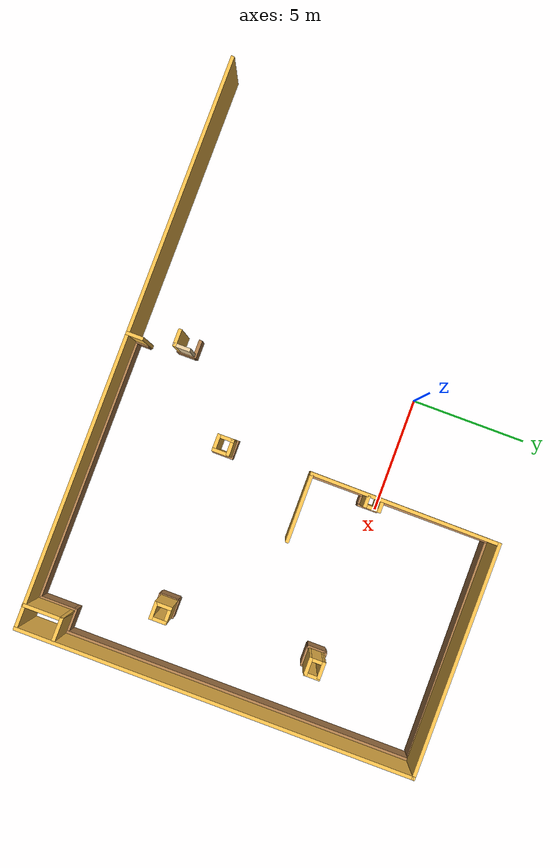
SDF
<sdf version="1.6">
 <model name="costa-gv">
  <pose>1.97685 -3.58664 0 0 -0 0</pose>
  <link name="Wall_162">
   <collision name="Wall_162_Collision">
    <geometry><box><size>0.7 0.15 1</size></box></geometry>
    <pose>0 0 0.5 0 -0 0</pose>
   </collision>
   <visual name="Wall_162_Visual">
    <pose>0 0 0.5 0 -0 0</pose>
    <geometry><box><size>0.7 0.15 1</size></box></geometry>
    <material>
     <script><uri>file://media/materials/scripts/gazebo.material</uri><name>Gazebo/Wood</name></script>
     <ambient>1 1 1 1</ambient>
    </material>
    <meta><layer>0</layer></meta>
   </visual>
   <pose>-0.174848 -8.16836 0 0 -0 -1.5708</pose>
  </link>
  <link name="Wall_169">
   <collision name="Wall_169_Collision">
    <geometry><box><size>0.8 0.15 1</size></box></geometry>
    <pose>0 0 0.5 0 -0 0</pose>
   </collision>
   <visual name="Wall_169_Visual">
    <pose>0 0 0.5 0 -0 0</pose>
    <geometry><box><size>0.8 0.15 1</size></box></geometry>
    <material>
     <script><uri>file://media/materials/scripts/gazebo.material</uri><name>Gazebo/Wood</name></script>
     <ambient>1 1 1 1</ambient>
    </material>
    <meta><layer>0</layer></meta>
   </visual>
   <pose>-0.414512 -6.23417 0 0 -0 -1.5708</pose>
  </link>
  <link name="Wall_173">
   <collision name="Wall_173_Collision">
    <geometry><box><size>0.8 0.15 1</size></box></geometry>
    <pose>0 0 0.5 0 -0 0</pose>
   </collision>
   <visual name="Wall_173_Visual">
    <pose>0 0 0.5 0 -0 0</pose>
    <geometry><box><size>0.8 0.15 1</size></box></geometry>
    <material>
     <script><uri>file://media/materials/scripts/gazebo.material</uri><name>Gazebo/Wood</name></script>
     <ambient>1 1 1 1</ambient>
    </material>
    <meta><layer>0</layer></meta>
   </visual>
   <pose>-0.75539 -5.84258 0 0 -0 0</pose>
  </link>
  <link name="Wall_175">
   <collision name="Wall_175_Collision">
    <geometry><box><size>11.5 0.15 1</size></box></geometry>
    <pose>0 0 0.5 0 -0 0</pose>
   </collision>
   <visual name="Wall_175_Visual">
    <pose>0 0 0.5 0 -0 0</pose>
    <geometry><box><size>11.5 0.15 1</size></box></geometry>
    <material>
     <script><uri>file://media/materials/scripts/gazebo.material</uri><name>Gazebo/Wood</name></script>
     <ambient>1 1 1 1</ambient>
    </material>
    <meta><layer>0</layer></meta>
   </visual>
   <pose>5.58313 -8.36284 0 0 -0 0</pose>
  </link>
  <link name="Wall_177">
   <collision name="Wall_177_Collision">
    <geometry><box><size>1.6 0.15 1</size></box></geometry>
    <pose>0 0 0.5 0 -0 0</pose>
   </collision>
   <visual name="Wall_177_Visual">
    <pose>0 0 0.5 0 -0 0</pose>
    <geometry><box><size>1.6 0.15 1</size></box></geometry>
    <material>
     <script><uri>file://media/materials/scripts/gazebo.material</uri><name>Gazebo/Wood</name></script>
     <ambient>1 1 1 1</ambient>
    </material>
    <meta><layer>0</layer></meta>
   </visual>
   <pose>11.2848 -7.54313 0 0 -0 -1.5708</pose>
  </link>
  <link name="Wall_179">
   <collision name="Wall_179_Collision">
    <geometry><box><size>1.15 0.15 1</size></box></geometry>
    <pose>0 0 0.5 0 -0 0</pose>
   </collision>
   <visual name="Wall_179_Visual">
    <pose>0 0 0.5 0 -0 0</pose>
    <geometry><box><size>1.15 0.15 1</size></box></geometry>
    <material>
     <script><uri>file://media/materials/scripts/gazebo.material</uri><name>Gazebo/Wood</name></script>
     <ambient>1 1 1 1</ambient>
    </material>
    <meta><layer>0</layer></meta>
   </visual>
   <pose>11.7805 -6.77121 0 0 -0 3.14159</pose>
  </link>
  <link name="Wall_181">
   <collision name="Wall_181_Collision">
    <geometry><box><size>0.75 0.15 1</size></box></geometry>
    <pose>0 0 0.5 0 -0 0</pose>
   </collision>
   <visual name="Wall_181_Visual">
    <pose>0 0 0.5 0 -0 0</pose>
    <geometry><box><size>0.75 0.15 1</size></box></geometry>
    <material>
     <script><uri>file://media/materials/scripts/gazebo.material</uri><name>Gazebo/Wood</name></script>
     <ambient>1 1 1 1</ambient>
    </material>
    <meta><layer>0</layer></meta>
   </visual>
   <pose>2.70847 -3.64523 0 0 -0 0</pose>
  </link>
  <link name="Wall_183">
   <collision name="Wall_183_Collision">
    <geometry><box><size>0.9 0.15 1</size></box></geometry>
    <pose>0 0 0.5 0 -0 0</pose>
   </collision>
   <visual name="Wall_183_Visual">
    <pose>0 0 0.5 0 -0 0</pose>
    <geometry><box><size>0.9 0.15 1</size></box></geometry>
    <material>
     <script><uri>file://media/materials/scripts/gazebo.material</uri><name>Gazebo/Wood</name></script>
     <ambient>1 1 1 1</ambient>
    </material>
    <meta><layer>0</layer></meta>
   </visual>
   <pose>3.03515 -3.27436 0 0 -0 -1.5708</pose>
  </link>
  <link name="Wall_185">
   <collision name="Wall_185_Collision">
    <geometry><box><size>0.75 0.15 1</size></box></geometry>
    <pose>0 0 0.5 0 -0 0</pose>
   </collision>
   <visual name="Wall_185_Visual">
    <pose>0 0 0.5 0 -0 0</pose>
    <geometry><box><size>0.75 0.15 1</size></box></geometry>
    <material>
     <script><uri>file://media/materials/scripts/gazebo.material</uri><name>Gazebo/Wood</name></script>
     <ambient>1 1 1 1</ambient>
    </material>
    <meta><layer>0</layer></meta>
   </visual>
   <pose>2.65506 -2.89971 0 0 -0 0</pose>
  </link>
  <link name="Wall_187">
   <collision name="Wall_187_Collision">
    <geometry><box><size>0.8 0.15 1</size></box></geometry>
    <pose>0 0 0.5 0 -0 0</pose>
   </collision>
   <visual name="Wall_187_Visual">
    <pose>0 0 0.5 0 -0 0</pose>
    <geometry><box><size>0.8 0.15 1</size></box></geometry>
    <material>
     <script><uri>file://media/materials/scripts/gazebo.material</uri><name>Gazebo/Wood</name></script>
     <ambient>1 1 1 1</ambient>
    </material>
    <meta><layer>0</layer></meta>
   </visual>
   <pose>10.133 -3.27767 0 0 -0 -1.5708</pose>
  </link>
  <link name="Wall_189">
   <collision name="Wall_189_Collision">
    <geometry><box><size>0.8 0.15 1</size></box></geometry>
    <pose>0 0 0.5 0 -0 0</pose>
   </collision>
   <visual name="Wall_189_Visual">
    <pose>0 0 0.5 0 -0 0</pose>
    <geometry><box><size>0.8 0.15 1</size></box></geometry>
    <material>
     <script><uri>file://media/materials/scripts/gazebo.material</uri><name>Gazebo/Wood</name></script>
     <ambient>1 1 1 1</ambient>
    </material>
    <meta><layer>0</layer></meta>
   </visual>
   <pose>9.42716 -3.27767 0 0 -0 -1.5708</pose>
  </link>
  <link name="Wall_191">
   <collision name="Wall_191_Collision">
    <geometry><box><size>0.8 0.15 1</size></box></geometry>
    <pose>0 0 0.5 0 -0 0</pose>
   </collision>
   <visual name="Wall_191_Visual">
    <pose>0 0 0.5 0 -0 0</pose>
    <geometry><box><size>0.8 0.15 1</size></box></geometry>
    <material>
     <script><uri>file://media/materials/scripts/gazebo.material</uri><name>Gazebo/Wood</name></script>
     <ambient>1 1 1 1</ambient>
    </material>
    <meta><layer>0</layer></meta>
   </visual>
   <pose>9.79211 -2.8994 0 0 -0 0</pose>
  </link>
  <link name="Wall_193">
   <collision name="Wall_193_Collision">
    <geometry><box><size>0.8 0.15 1</size></box></geometry>
    <pose>0 0 0.5 0 -0 0</pose>
   </collision>
   <visual name="Wall_193_Visual">
    <pose>0 0 0.5 0 -0 0</pose>
    <geometry><box><size>0.8 0.15 1</size></box></geometry>
    <material>
     <script><uri>file://media/materials/scripts/gazebo.material</uri><name>Gazebo/Wood</name></script>
     <ambient>1 1 1 1</ambient>
    </material>
    <meta><layer>0</layer></meta>
   </visual>
   <pose>9.79211 -3.6585 0 0 -0 0</pose>
  </link>
  <link name="Wall_195">
   <collision name="Wall_195_Collision">
    <geometry><box><size>2.5 0.15 1</size></box></geometry>
    <pose>0 0 0.5 0 -0 0</pose>
   </collision>
   <visual name="Wall_195_Visual">
    <pose>0 0 0.5 0 -0 0</pose>
    <geometry><box><size>2.5 0.15 1</size></box></geometry>
    <material>
     <script><uri>file://media/materials/scripts/gazebo.material</uri><name>Gazebo/Wood</name></script>
     <ambient>1 1 1 1</ambient>
    </material>
    <meta><layer>0</layer></meta>
   </visual>
   <pose>2.58315 1.69081 0 0 -0 -1.5708</pose>
  </link>
  <link name="Wall_199">
   <collision name="Wall_199_Collision">
    <geometry><box><size>0.9 0.15 1</size></box></geometry>
    <pose>0 0 0.5 0 -0 0</pose>
   </collision>
   <visual name="Wall_199_Visual">
    <pose>0 0 0.5 0 -0 0</pose>
    <geometry><box><size>0.9 0.15 1</size></box></geometry>
    <material>
     <script><uri>file://media/materials/scripts/gazebo.material</uri><name>Gazebo/Wood</name></script>
     <ambient>1 1 1 1</ambient>
    </material>
    <meta><layer>0</layer></meta>
   </visual>
   <pose>3.02615 3.21247 0 0 -0 -1.5708</pose>
  </link>
  <link name="Wall_201">
   <collision name="Wall_201_Collision">
    <geometry><box><size>0.5 0.15 1</size></box></geometry>
    <pose>0 0 0.5 0 -0 0</pose>
   </collision>
   <visual name="Wall_201_Visual">
    <pose>0 0 0.5 0 -0 0</pose>
    <geometry><box><size>0.5 0.15 1</size></box></geometry>
    <material>
     <script><uri>file://media/materials/scripts/gazebo.material</uri><name>Gazebo/Wood</name></script>
     <ambient>1 1 1 1</ambient>
    </material>
    <meta><layer>0</layer></meta>
   </visual>
   <pose>2.75815 2.81964 0 0 -0 3.14159</pose>
  </link>
  <link name="Wall_203">
   <collision name="Wall_203_Collision">
    <geometry><box><size>0.5 0.15 1</size></box></geometry>
    <pose>0 0 0.5 0 -0 0</pose>
   </collision>
   <visual name="Wall_203_Visual">
    <pose>0 0 0.5 0 -0 0</pose>
    <geometry><box><size>0.5 0.15 1</size></box></geometry>
    <material>
     <script><uri>file://media/materials/scripts/gazebo.material</uri><name>Gazebo/Wood</name></script>
     <ambient>1 1 1 1</ambient>
    </material>
    <meta><layer>0</layer></meta>
   </visual>
   <pose>2.73412 3.61144 0 0 -0 3.14159</pose>
  </link>
  <link name="Wall_205">
   <collision name="Wall_205_Collision">
    <geometry><box><size>4.75 0.15 1</size></box></geometry>
    <pose>0 0 0.5 0 -0 0</pose>
   </collision>
   <visual name="Wall_205_Visual">
    <pose>0 0 0.5 0 -0 0</pose>
    <geometry><box><size>4.75 0.15 1</size></box></geometry>
    <material>
     <script><uri>file://media/materials/scripts/gazebo.material</uri><name>Gazebo/Wood</name></script>
     <ambient>1 1 1 1</ambient>
    </material>
    <meta><layer>0</layer></meta>
   </visual>
   <pose>2.60715 6.03935 0 0 -0 -1.5708</pose>
  </link>
  <link name="Wall_207">
   <collision name="Wall_207_Collision">
    <geometry><box><size>0.8 0.15 1</size></box></geometry>
    <pose>0 0 0.5 0 -0 0</pose>
   </collision>
   <visual name="Wall_207_Visual">
    <pose>0 0 0.5 0 -0 0</pose>
    <geometry><box><size>0.8 0.15 1</size></box></geometry>
    <material>
     <script><uri>file://media/materials/scripts/gazebo.material</uri><name>Gazebo/Wood</name></script>
     <ambient>1 1 1 1</ambient>
    </material>
    <meta><layer>0</layer></meta>
   </visual>
   <pose>9.6862 3.63471 0 0 -0 0</pose>
  </link>
  <link name="Wall_209">
   <collision name="Wall_209_Collision">
    <geometry><box><size>0.8 0.15 1</size></box></geometry>
    <pose>0 0 0.5 0 -0 0</pose>
   </collision>
   <visual name="Wall_209_Visual">
    <pose>0 0 0.5 0 -0 0</pose>
    <geometry><box><size>0.8 0.15 1</size></box></geometry>
    <material>
     <script><uri>file://media/materials/scripts/gazebo.material</uri><name>Gazebo/Wood</name></script>
     <ambient>1 1 1 1</ambient>
    </material>
    <meta><layer>0</layer></meta>
   </visual>
   <pose>9.70978 2.88914 0 0 -0 0</pose>
  </link>
  <link name="Wall_211">
   <collision name="Wall_211_Collision">
    <geometry><box><size>0.8 0.15 1</size></box></geometry>
    <pose>0 0 0.5 0 -0 0</pose>
   </collision>
   <visual name="Wall_211_Visual">
    <pose>0 0 0.5 0 -0 0</pose>
    <geometry><box><size>0.8 0.15 1</size></box></geometry>
    <material>
     <script><uri>file://media/materials/scripts/gazebo.material</uri><name>Gazebo/Wood</name></script>
     <ambient>1 1 1 1</ambient>
    </material>
    <meta><layer>0</layer></meta>
   </visual>
   <pose>10.0836 3.23963 0 0 -0 -1.5708</pose>
  </link>
  <link name="Wall_213">
   <collision name="Wall_213_Collision">
    <geometry><box><size>0.8 0.15 1</size></box></geometry>
    <pose>0 0 0.5 0 -0 0</pose>
   </collision>
   <visual name="Wall_213_Visual">
    <pose>0 0 0.5 0 -0 0</pose>
    <geometry><box><size>0.8 0.15 1</size></box></geometry>
    <material>
     <script><uri>file://media/materials/scripts/gazebo.material</uri><name>Gazebo/Wood</name></script>
     <ambient>1 1 1 1</ambient>
    </material>
    <meta><layer>0</layer></meta>
   </visual>
   <pose>9.31515 3.23964 0 0 -0 -1.5708</pose>
  </link>
  <link name="Wall_215">
   <collision name="Wall_215_Collision">
    <geometry><box><size>9.5 0.15 1</size></box></geometry>
    <pose>0 0 0.5 0 -0 0</pose>
   </collision>
   <visual name="Wall_215_Visual">
    <pose>0 0 0.5 0 -0 0</pose>
    <geometry><box><size>9.5 0.15 1</size></box></geometry>
    <material>
     <script><uri>file://media/materials/scripts/gazebo.material</uri><name>Gazebo/Wood</name></script>
     <ambient>1 1 1 1</ambient>
    </material>
    <meta><layer>0</layer></meta>
   </visual>
   <pose>7.37515 8.36264 0 0 -0 0</pose>
  </link>
  <link name="Wall_217">
   <collision name="Wall_217_Collision">
    <geometry><box><size>15.25 0.15 1</size></box></geometry>
    <pose>0 0 0.5 0 -0 0</pose>
   </collision>
   <visual name="Wall_217_Visual">
    <pose>0 0 0.5 0 -0 0</pose>
    <geometry><box><size>15.25 0.15 1</size></box></geometry>
    <material>
     <script><uri>file://media/materials/scripts/gazebo.material</uri><name>Gazebo/Wood</name></script>
     <ambient>1 1 1 1</ambient>
    </material>
    <meta><layer>0</layer></meta>
   </visual>
   <pose>12.2443 0.762065 0 0 -0 -1.5708</pose>
  </link>
  <link name="Wall_33">
   <collision name="Wall_33_Collision">
    <geometry><box><size>0.75 0.15 3</size></box></geometry>
    <pose>0 0 1.5 0 -0 0</pose>
   </collision>
   <visual name="Wall_33_Visual">
    <pose>0 0 1.5 0 -0 0</pose>
    <geometry><box><size>0.75 0.15 3</size></box></geometry>
    <material>
     <script><uri>file://media/materials/scripts/gazebo.material</uri><name>Gazebo/Grey</name></script>
     <ambient>0.921569 0.807843 0.615686 1</ambient>
    </material>
    <meta><layer>0</layer></meta>
   </visual>
   <pose>-0.459848 -6.22136 0 0 -0 -1.5708</pose>
  </link>
  <link name="Wall_34">
   <collision name="Wall_34_Collision">
    <geometry><box><size>0.75 0.15 3</size></box></geometry>
    <pose>0 0 1.5 0 -0 0</pose>
   </collision>
   <visual name="Wall_34_Visual">
    <pose>0 0 1.5 0 -0 0</pose>
    <geometry><box><size>0.75 0.15 3</size></box></geometry>
    <material>
     <script><uri>file://media/materials/scripts/gazebo.material</uri><name>Gazebo/Grey</name></script>
     <ambient>1 0.764706 0.305882 1</ambient>
    </material>
    <meta><layer>0</layer></meta>
   </visual>
   <pose>-0.759848 -6.52136 0 0 -0 3.14159</pose>
  </link>
  <link name="Wall_37">
   <collision name="Wall_37_Collision">
    <geometry><box><size>0.751 0.15 3</size></box></geometry>
    <pose>0 0 1.5 0 -0 0</pose>
   </collision>
   <visual name="Wall_37_Visual">
    <pose>0 0 1.5 0 -0 0</pose>
    <geometry><box><size>0.751 0.15 3</size></box></geometry>
    <material>
     <script><uri>file://media/materials/scripts/gazebo.material</uri><name>Gazebo/Grey</name></script>
     <ambient>1 0.764706 0.305882 1</ambient>
    </material>
    <meta><layer>0</layer></meta>
   </visual>
   <pose>2.6549 -2.96586 0 0 -0 0.028256</pose>
  </link>
  <link name="Wall_38">
   <collision name="Wall_38_Collision">
    <geometry><box><size>0.73251 0.15 3</size></box></geometry>
    <pose>0 0 1.5 0 -0 0</pose>
   </collision>
   <visual name="Wall_38_Visual">
    <pose>0 0 1.5 0 -0 0</pose>
    <geometry><box><size>0.73251 0.15 3</size></box></geometry>
    <material>
     <script><uri>file://media/materials/scripts/gazebo.material</uri><name>Gazebo/Grey</name></script>
     <ambient>1 0.764706 0.305882 1</ambient>
    </material>
    <meta><layer>0</layer></meta>
   </visual>
   <pose>2.9554 -3.26611 0 0 -0 -1.57164</pose>
  </link>
  <link name="Wall_39">
   <collision name="Wall_39_Collision">
    <geometry><box><size>0.75 0.15 3</size></box></geometry>
    <pose>0 0 1.5 0 -0 0</pose>
   </collision>
   <visual name="Wall_39_Visual">
    <pose>0 0 1.5 0 -0 0</pose>
    <geometry><box><size>0.75 0.15 3</size></box></geometry>
    <material>
     <script><uri>file://media/materials/scripts/gazebo.material</uri><name>Gazebo/Grey</name></script>
     <ambient>1 0.764706 0.305882 1</ambient>
    </material>
    <meta><layer>0</layer></meta>
   </visual>
   <pose>2.65515 -3.55736 0 0 -0 3.14159</pose>
  </link>
  <link name="Wall_40">
   <collision name="Wall_40_Collision">
    <geometry><box><size>0.73251 0.15 3</size></box></geometry>
    <pose>0 0 1.5 0 -0 0</pose>
   </collision>
   <visual name="Wall_40_Visual">
    <pose>0 0 1.5 0 -0 0</pose>
    <geometry><box><size>0.73251 0.15 3</size></box></geometry>
    <material>
     <script><uri>file://media/materials/scripts/gazebo.material</uri><name>Gazebo/Grey</name></script>
     <ambient>1 0.764706 0.305882 1</ambient>
    </material>
    <meta><layer>0</layer></meta>
   </visual>
   <pose>2.35465 -3.26586 0 0 -0 1.57251</pose>
  </link>
  <link name="Wall_42">
   <collision name="Wall_42_Collision">
    <geometry><box><size>0.75 0.15 3</size></box></geometry>
    <pose>0 0 1.5 0 -0 0</pose>
   </collision>
   <visual name="Wall_42_Visual">
    <pose>0 0 1.5 0 -0 0</pose>
    <geometry><box><size>0.75 0.15 3</size></box></geometry>
    <material>
     <script><uri>file://media/materials/scripts/gazebo.material</uri><name>Gazebo/Grey</name></script>
     <ambient>1 0.764706 0.305882 1</ambient>
    </material>
    <meta><layer>0</layer></meta>
   </visual>
   <pose>9.77815 -2.95836 0 0 -0 0</pose>
  </link>
  <link name="Wall_43">
   <collision name="Wall_43_Collision">
    <geometry><box><size>0.75 0.15 3</size></box></geometry>
    <pose>0 0 1.5 0 -0 0</pose>
   </collision>
   <visual name="Wall_43_Visual">
    <pose>0 0 1.5 0 -0 0</pose>
    <geometry><box><size>0.75 0.15 3</size></box></geometry>
    <material>
     <script><uri>file://media/materials/scripts/gazebo.material</uri><name>Gazebo/Grey</name></script>
     <ambient>1 0.764706 0.305882 1</ambient>
    </material>
    <meta><layer>0</layer></meta>
   </visual>
   <pose>10.0782 -3.25836 0 0 -0 -1.5708</pose>
  </link>
  <link name="Wall_44">
   <collision name="Wall_44_Collision">
    <geometry><box><size>0.749866 0.15 3</size></box></geometry>
    <pose>0 0 1.5 0 -0 0</pose>
   </collision>
   <visual name="Wall_44_Visual">
    <pose>0 0 1.5 0 -0 0</pose>
    <geometry><box><size>0.749866 0.15 3</size></box></geometry>
    <material>
     <script><uri>file://media/materials/scripts/gazebo.material</uri><name>Gazebo/Grey</name></script>
     <ambient>1 0.764706 0.305882 1</ambient>
    </material>
    <meta><layer>0</layer></meta>
   </visual>
   <pose>9.77815 -3.55836 0 0 -0 3.14159</pose>
  </link>
  <link name="Wall_45">
   <collision name="Wall_45_Collision">
    <geometry><box><size>0.75 0.15 3</size></box></geometry>
    <pose>0 0 1.5 0 -0 0</pose>
   </collision>
   <visual name="Wall_45_Visual">
    <pose>0 0 1.5 0 -0 0</pose>
    <geometry><box><size>0.75 0.15 3</size></box></geometry>
    <material>
     <script><uri>file://media/materials/scripts/gazebo.material</uri><name>Gazebo/Grey</name></script>
     <ambient>1 0.764706 0.305882 1</ambient>
    </material>
    <meta><layer>0</layer></meta>
   </visual>
   <pose>9.47815 -3.25836 0 0 -0 1.5708</pose>
  </link>
  <link name="Wall_47">
   <collision name="Wall_47_Collision">
    <geometry><box><size>0.5 0.15 3</size></box></geometry>
    <pose>0 0 1.5 0 -0 0</pose>
   </collision>
   <visual name="Wall_47_Visual">
    <pose>0 0 1.5 0 -0 0</pose>
    <geometry><box><size>0.5 0.15 3</size></box></geometry>
    <material>
     <script><uri>file://media/materials/scripts/gazebo.material</uri><name>Gazebo/Grey</name></script>
     <ambient>1 0.764706 0.305882 1</ambient>
    </material>
    <meta><layer>0</layer></meta>
   </visual>
   <pose>2.77015 3.51064 0 0 -0 0</pose>
  </link>
  <link name="Wall_48">
   <collision name="Wall_48_Collision">
    <geometry><box><size>0.75 0.15 3</size></box></geometry>
    <pose>0 0 1.5 0 -0 0</pose>
   </collision>
   <visual name="Wall_48_Visual">
    <pose>0 0 1.5 0 -0 0</pose>
    <geometry><box><size>0.75 0.15 3</size></box></geometry>
    <material>
     <script><uri>file://media/materials/scripts/gazebo.material</uri><name>Gazebo/Grey</name></script>
     <ambient>1 0.764706 0.305882 1</ambient>
    </material>
    <meta><layer>0</layer></meta>
   </visual>
   <pose>2.94515 3.21064 0 0 -0 -1.5708</pose>
  </link>
  <link name="Wall_49">
   <collision name="Wall_49_Collision">
    <geometry><box><size>0.5 0.15 3</size></box></geometry>
    <pose>0 0 1.5 0 -0 0</pose>
   </collision>
   <visual name="Wall_49_Visual">
    <pose>0 0 1.5 0 -0 0</pose>
    <geometry><box><size>0.5 0.15 3</size></box></geometry>
    <material>
     <script><uri>file://media/materials/scripts/gazebo.material</uri><name>Gazebo/Grey</name></script>
     <ambient>1 0.764706 0.305882 1</ambient>
    </material>
    <meta><layer>0</layer></meta>
   </visual>
   <pose>2.77015 2.91064 0 0 -0 3.14159</pose>
  </link>
  <link name="Wall_52">
   <collision name="Wall_52_Collision">
    <geometry><box><size>1.75 0.15 3</size></box></geometry>
    <pose>0 0 1.5 0 -0 0</pose>
   </collision>
   <visual name="Wall_52_Visual">
    <pose>0 0 1.5 0 -0 0</pose>
    <geometry><box><size>1.75 0.15 3</size></box></geometry>
    <material>
     <script><uri>file://media/materials/scripts/gazebo.material</uri><name>Gazebo/Grey</name></script>
     <ambient>1 0.764706 0.305882 1</ambient>
    </material>
    <meta><layer>0</layer></meta>
   </visual>
   <pose>11.3762 -7.67136 0 0 -0 -1.5708</pose>
  </link>
  <link name="Wall_54">
   <collision name="Wall_54_Collision">
    <geometry><box><size>1 0.15 3</size></box></geometry>
    <pose>0 0 1.5 0 -0 0</pose>
   </collision>
   <visual name="Wall_54_Visual">
    <pose>0 0 1.5 0 -0 0</pose>
    <geometry><box><size>1 0.15 3</size></box></geometry>
    <material>
     <script><uri>file://media/materials/scripts/gazebo.material</uri><name>Gazebo/Grey</name></script>
     <ambient>1 0.764706 0.305882 1</ambient>
    </material>
    <meta><layer>0</layer></meta>
   </visual>
   <pose>11.8012 -6.87136 0 0 -0 0</pose>
  </link>
  <link name="Wall_60">
   <collision name="Wall_60_Collision">
    <geometry><box><size>24.796 0.15 3</size></box></geometry>
    <pose>0 0 1.5 0 -0 0</pose>
   </collision>
   <visual name="Wall_60_Visual">
    <pose>0 0 1.5 0 -0 0</pose>
    <geometry><box><size>24.796 0.15 3</size></box></geometry>
    <material>
     <script><uri>file://media/materials/scripts/gazebo.material</uri><name>Gazebo/Grey</name></script>
     <ambient>1 0.764706 0.305882 1</ambient>
    </material>
    <meta><layer>0</layer></meta>
   </visual>
   <pose>0.037152 -8.45936 0 0 -0 3.14159</pose>
  </link>
  <link name="Wall_78">
   <collision name="Wall_78_Collision">
    <geometry><box><size>0.75 0.15 3</size></box></geometry>
    <pose>0 0 1.5 0 -0 0</pose>
   </collision>
   <visual name="Wall_78_Visual">
    <pose>0 0 1.5 0 -0 0</pose>
    <geometry><box><size>0.75 0.15 3</size></box></geometry>
    <material>
     <script><uri>file://media/materials/scripts/gazebo.material</uri><name>Gazebo/Grey</name></script>
     <ambient>1 0.764706 0.305882 1</ambient>
    </material>
    <meta><layer>0</layer></meta>
   </visual>
   <pose>-0.231848 -8.15836 0 0 -0 -1.5708</pose>
  </link>
  <link name="Wall_80">
   <collision name="Wall_80_Collision">
    <geometry><box><size>17 0.15 3</size></box></geometry>
    <pose>0 0 1.5 0 -0 0</pose>
   </collision>
   <visual name="Wall_80_Visual">
    <pose>0 0 1.5 0 -0 0</pose>
    <geometry><box><size>17 0.15 3</size></box></geometry>
    <material>
     <script><uri>file://media/materials/scripts/gazebo.material</uri><name>Gazebo/Grey</name></script>
     <ambient>1 0.764706 0.305882 1</ambient>
    </material>
    <meta><layer>0</layer></meta>
   </visual>
   <pose>12.3602 -0.034362 0 0 -0 1.5708</pose>
  </link>
  <link name="Wall_81">
   <collision name="Wall_81_Collision">
    <geometry><box><size>9.97469 0.15 3</size></box></geometry>
    <pose>0 0 1.5 0 -0 0</pose>
   </collision>
   <visual name="Wall_81_Visual">
    <pose>0 0 1.5 0 -0 0</pose>
    <geometry><box><size>9.97469 0.15 3</size></box></geometry>
    <material>
     <script><uri>file://media/materials/scripts/gazebo.material</uri><name>Gazebo/Grey</name></script>
     <ambient>1 0.764706 0.305882 1</ambient>
    </material>
    <meta><layer>0</layer></meta>
   </visual>
   <pose>7.44815 8.43064 0 0 -0 3.13345</pose>
  </link>
  <link name="Wall_83">
   <collision name="Wall_83_Collision">
    <geometry><box><size>0.767 0.15 3</size></box></geometry>
    <pose>0 0 1.5 0 -0 0</pose>
   </collision>
   <visual name="Wall_83_Visual">
    <pose>0 0 1.5 0 -0 0</pose>
    <geometry><box><size>0.767 0.15 3</size></box></geometry>
    <material>
     <script><uri>file://media/materials/scripts/gazebo.material</uri><name>Gazebo/Grey</name></script>
     <ambient>1 0.764706 0.305882 1</ambient>
    </material>
    <meta><layer>0</layer></meta>
   </visual>
   <pose>9.70765 3.52564 0 0 -0 0</pose>
  </link>
  <link name="Wall_84">
   <collision name="Wall_84_Collision">
    <geometry><box><size>0.680042 0.15 3</size></box></geometry>
    <pose>0 0 1.5 0 -0 0</pose>
   </collision>
   <visual name="Wall_84_Visual">
    <pose>0 0 1.5 0 -0 0</pose>
    <geometry><box><size>0.680042 0.15 3</size></box></geometry>
    <material>
     <script><uri>file://media/materials/scripts/gazebo.material</uri><name>Gazebo/Grey</name></script>
     <ambient>1 0.764706 0.305882 1</ambient>
    </material>
    <meta><layer>0</layer></meta>
   </visual>
   <pose>10.0169 3.26062 0 0 -0 -1.56798</pose>
  </link>
  <link name="Wall_85">
   <collision name="Wall_85_Collision">
    <geometry><box><size>0.768 0.15 3</size></box></geometry>
    <pose>0 0 1.5 0 -0 0</pose>
   </collision>
   <visual name="Wall_85_Visual">
    <pose>0 0 1.5 0 -0 0</pose>
    <geometry><box><size>0.768 0.15 3</size></box></geometry>
    <material>
     <script><uri>file://media/materials/scripts/gazebo.material</uri><name>Gazebo/Grey</name></script>
     <ambient>1 0.764706 0.305882 1</ambient>
    </material>
    <meta><layer>0</layer></meta>
   </visual>
   <pose>9.70864 2.97811 0 0 -0 3.14159</pose>
  </link>
  <link name="Wall_86">
   <collision name="Wall_86_Collision">
    <geometry><box><size>0.68004 0.15 3</size></box></geometry>
    <pose>0 0 1.5 0 -0 0</pose>
   </collision>
   <visual name="Wall_86_Visual">
    <pose>0 0 1.5 0 -0 0</pose>
    <geometry><box><size>0.68004 0.15 3</size></box></geometry>
    <material>
     <script><uri>file://media/materials/scripts/gazebo.material</uri><name>Gazebo/Grey</name></script>
     <ambient>1 0.764706 0.305882 1</ambient>
    </material>
    <meta><layer>0</layer></meta>
   </visual>
   <pose>9.3994 3.26062 0 0 -0 1.57172</pose>
  </link>
  <link name="Wall_9">
   <collision name="Wall_9_Collision">
    <geometry><box><size>8.13971 0.15 3</size></box></geometry>
    <pose>0 0 1.5 0 -0 0</pose>
   </collision>
   <visual name="Wall_9_Visual">
    <pose>0 0 1.5 0 -0 0</pose>
    <geometry><box><size>8.13971 0.15 3</size></box></geometry>
    <material>
     <script><uri>file://media/materials/scripts/gazebo.material</uri><name>Gazebo/Grey</name></script>
     <ambient>1 0.764706 0.305882 1</ambient>
    </material>
    <meta><layer>0</layer></meta>
   </visual>
   <pose>2.51265 4.47614 0 0 -0 -1.57668</pose>
  </link>
  <link name="Wall_98">
   <collision name="Wall_98_Collision">
    <geometry><box><size>3 0.15 3</size></box></geometry>
    <pose>0 0 1.5 0 -0 0</pose>
   </collision>
   <visual name="Wall_98_Visual">
    <pose>0 0 1.5 0 -0 0</pose>
    <geometry><box><size>3 0.15 3</size></box></geometry>
    <material>
     <script><uri>file://media/materials/scripts/gazebo.material</uri><name>Gazebo/Grey</name></script>
     <ambient>1 0.764706 0.305882 1</ambient>
    </material>
    <meta><layer>0</layer></meta>
   </visual>
   <pose>3.91415 0.481638 0 0 -0 0</pose>
  </link>
  <static>1</static>
 </model>
</sdf>
